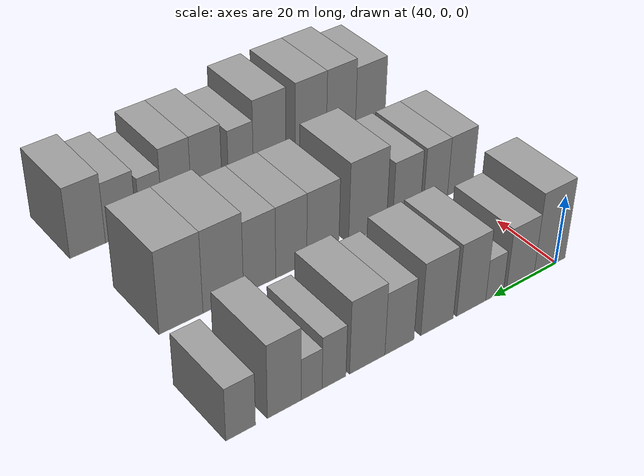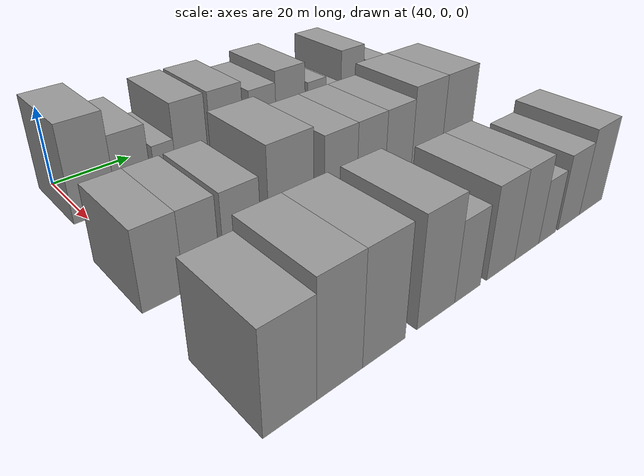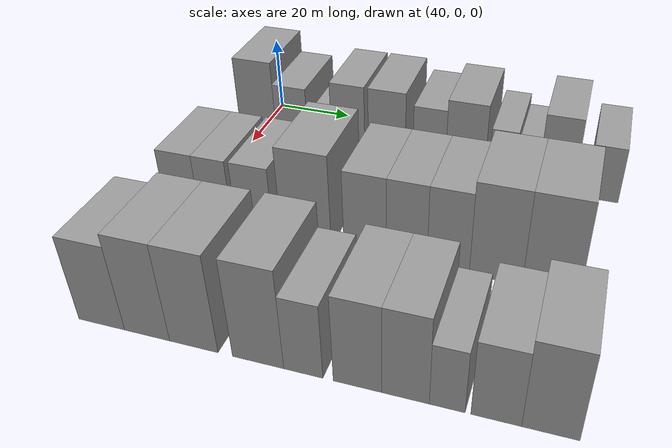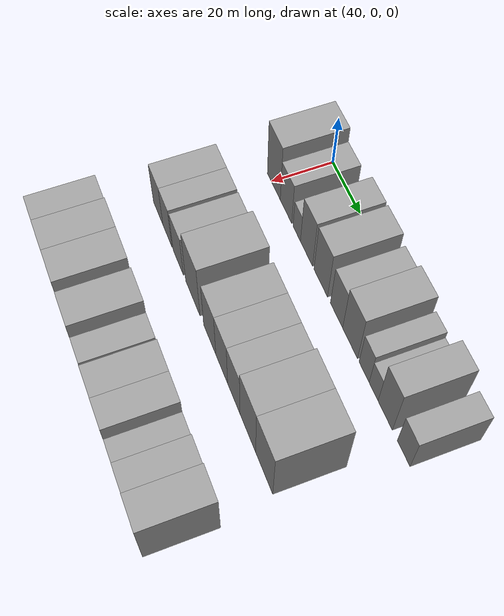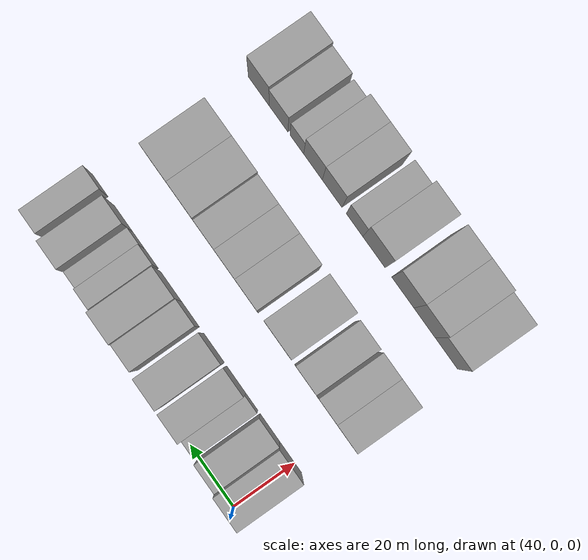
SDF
<sdf version="1.6">
 <world name="default">
  <model name="building_42">
   <static>1</static>
   <pose>50.0000 2.0145 0 0.000000 0.000000 0.000000</pose>
   <link name="link">
    <pose>0 0 12.00 0 0 0</pose>
    <collision name="collision"><geometry><box><size>20.0000 10.2558 24.0000</size></box></geometry></collision>
    <visual name="visual">
     <cast_shadows>0</cast_shadows>
     <geometry><box><size>20.0000 10.2558 24.0000</size></box></geometry>
     <material>
      <script>
       <uri>model://grey_wall/materials/scripts</uri>
       <uri>model://grey_wall/materials/textures</uri>
       <name>vrc/grey_wall</name>
      </script>
     </material>
    </visual>
   </link>
  </model>
  <model name="building_43">
   <static>1</static>
   <pose>50.0000 11.5758 0 0.000000 0.000000 0.000000</pose>
   <link name="link">
    <pose>0 0 9.00 0 0 0</pose>
    <collision name="collision"><geometry><box><size>20.0000 8.8667 18.0000</size></box></geometry></collision>
    <visual name="visual">
     <cast_shadows>0</cast_shadows>
     <geometry><box><size>20.0000 8.8667 18.0000</size></box></geometry>
     <material>
      <script>
       <uri>model://grey_wall/materials/scripts</uri>
       <uri>model://grey_wall/materials/textures</uri>
       <name>vrc/grey_wall</name>
      </script>
     </material>
    </visual>
   </link>
  </model>
  <model name="building_44">
   <static>1</static>
   <pose>50.0000 19.8012 0 0.000000 0.000000 0.000000</pose>
   <link name="link">
    <pose>0 0 6.00 0 0 0</pose>
    <collision name="collision"><geometry><box><size>20.0000 5.5843 12.0000</size></box></geometry></collision>
    <visual name="visual">
     <cast_shadows>0</cast_shadows>
     <geometry><box><size>20.0000 5.5843 12.0000</size></box></geometry>
     <material>
      <script>
       <uri>model://grey_wall/materials/scripts</uri>
       <uri>model://grey_wall/materials/textures</uri>
       <name>vrc/grey_wall</name>
      </script>
     </material>
    </visual>
   </link>
  </model>
  <model name="building_45">
   <static>1</static>
   <pose>50.0000 27.0636 0 0.000000 0.000000 0.000000</pose>
   <link name="link">
    <pose>0 0 10.50 0 0 0</pose>
    <collision name="collision"><geometry><box><size>20.0000 8.9404 21.0000</size></box></geometry></collision>
    <visual name="visual">
     <cast_shadows>0</cast_shadows>
     <geometry><box><size>20.0000 8.9404 21.0000</size></box></geometry>
     <material>
      <script>
       <uri>model://grey_wall/materials/scripts</uri>
       <uri>model://grey_wall/materials/textures</uri>
       <name>vrc/grey_wall</name>
      </script>
     </material>
    </visual>
   </link>
  </model>
  <model name="building_46">
   <static>1</static>
   <pose>50.0000 37.3804 0 0.000000 0.000000 0.000000</pose>
   <link name="link">
    <pose>0 0 10.50 0 0 0</pose>
    <collision name="collision"><geometry><box><size>20.0000 9.6932 21.0000</size></box></geometry></collision>
    <visual name="visual">
     <cast_shadows>0</cast_shadows>
     <geometry><box><size>20.0000 9.6932 21.0000</size></box></geometry>
     <material>
      <script>
       <uri>model://grey_wall/materials/scripts</uri>
       <uri>model://grey_wall/materials/textures</uri>
       <name>vrc/grey_wall</name>
      </script>
     </material>
    </visual>
   </link>
  </model>
  <model name="building_47">
   <static>1</static>
   <pose>50.0000 48.4204 0 0.000000 0.000000 0.000000</pose>
   <link name="link">
    <pose>0 0 9.00 0 0 0</pose>
    <collision name="collision"><geometry><box><size>20.0000 8.3869 18.0000</size></box></geometry></collision>
    <visual name="visual">
     <cast_shadows>0</cast_shadows>
     <geometry><box><size>20.0000 8.3869 18.0000</size></box></geometry>
     <material>
      <script>
       <uri>model://grey_wall/materials/scripts</uri>
       <uri>model://grey_wall/materials/textures</uri>
       <name>vrc/grey_wall</name>
      </script>
     </material>
    </visual>
   </link>
  </model>
  <model name="building_48">
   <static>1</static>
   <pose>50.0000 57.5546 0 0.000000 0.000000 0.000000</pose>
   <link name="link">
    <pose>0 0 10.50 0 0 0</pose>
    <collision name="collision"><geometry><box><size>20.0000 9.8814 21.0000</size></box></geometry></collision>
    <visual name="visual">
     <cast_shadows>0</cast_shadows>
     <geometry><box><size>20.0000 9.8814 21.0000</size></box></geometry>
     <material>
      <script>
       <uri>model://grey_wall/materials/scripts</uri>
       <uri>model://grey_wall/materials/textures</uri>
       <name>vrc/grey_wall</name>
      </script>
     </material>
    </visual>
   </link>
  </model>
  <model name="building_49">
   <static>1</static>
   <pose>50.0000 66.7380 0 0.000000 0.000000 0.000000</pose>
   <link name="link">
    <pose>0 0 7.50 0 0 0</pose>
    <collision name="collision"><geometry><box><size>20.0000 6.4854 15.0000</size></box></geometry></collision>
    <visual name="visual">
     <cast_shadows>0</cast_shadows>
     <geometry><box><size>20.0000 6.4854 15.0000</size></box></geometry>
     <material>
      <script>
       <uri>model://grey_wall/materials/scripts</uri>
       <uri>model://grey_wall/materials/textures</uri>
       <name>vrc/grey_wall</name>
      </script>
     </material>
    </visual>
   </link>
  </model>
  <model name="building_50">
   <static>1</static>
   <pose>50.0000 72.7875 0 0.000000 0.000000 0.000000</pose>
   <link name="link">
    <pose>0 0 6.00 0 0 0</pose>
    <collision name="collision"><geometry><box><size>20.0000 5.6137 12.0000</size></box></geometry></collision>
    <visual name="visual">
     <cast_shadows>0</cast_shadows>
     <geometry><box><size>20.0000 5.6137 12.0000</size></box></geometry>
     <material>
      <script>
       <uri>model://grey_wall/materials/scripts</uri>
       <uri>model://grey_wall/materials/textures</uri>
       <name>vrc/grey_wall</name>
      </script>
     </material>
    </visual>
   </link>
  </model>
  <model name="building_51">
   <static>1</static>
   <pose>50.0000 79.9788 0 0.000000 0.000000 0.000000</pose>
   <link name="link">
    <pose>0 0 10.50 0 0 0</pose>
    <collision name="collision"><geometry><box><size>20.0000 8.7689 21.0000</size></box></geometry></collision>
    <visual name="visual">
     <cast_shadows>0</cast_shadows>
     <geometry><box><size>20.0000 8.7689 21.0000</size></box></geometry>
     <material>
      <script>
       <uri>model://grey_wall/materials/scripts</uri>
       <uri>model://grey_wall/materials/textures</uri>
       <name>vrc/grey_wall</name>
      </script>
     </material>
    </visual>
   </link>
  </model>
  <model name="building_52">
   <static>1</static>
   <pose>50.0000 91.1030 0 0.000000 0.000000 0.000000</pose>
   <link name="link">
    <pose>0 0 7.50 0 0 0</pose>
    <collision name="collision"><geometry><box><size>20.0000 7.4795 15.0000</size></box></geometry></collision>
    <visual name="visual">
     <cast_shadows>0</cast_shadows>
     <geometry><box><size>20.0000 7.4795 15.0000</size></box></geometry>
     <material>
      <script>
       <uri>model://grey_wall/materials/scripts</uri>
       <uri>model://grey_wall/materials/textures</uri>
       <name>vrc/grey_wall</name>
      </script>
     </material>
    </visual>
   </link>
  </model>
  <model name="building_122">
   <static>1</static>
   <pose>85.0000 -1.0642 0 0.000000 0.000000 0.000000</pose>
   <link name="link">
    <pose>0 0 9.00 0 0 0</pose>
    <collision name="collision"><geometry><box><size>20.0000 8.7297 18.0000</size></box></geometry></collision>
    <visual name="visual">
     <cast_shadows>0</cast_shadows>
     <geometry><box><size>20.0000 8.7297 18.0000</size></box></geometry>
     <material>
      <script>
       <uri>model://grey_wall/materials/scripts</uri>
       <uri>model://grey_wall/materials/textures</uri>
       <name>vrc/grey_wall</name>
      </script>
     </material>
    </visual>
   </link>
  </model>
  <model name="building_123">
   <static>1</static>
   <pose>85.0000 7.3143 0 0.000000 0.000000 0.000000</pose>
   <link name="link">
    <pose>0 0 9.00 0 0 0</pose>
    <collision name="collision"><geometry><box><size>20.0000 8.0273 18.0000</size></box></geometry></collision>
    <visual name="visual">
     <cast_shadows>0</cast_shadows>
     <geometry><box><size>20.0000 8.0273 18.0000</size></box></geometry>
     <material>
      <script>
       <uri>model://grey_wall/materials/scripts</uri>
       <uri>model://grey_wall/materials/textures</uri>
       <name>vrc/grey_wall</name>
      </script>
     </material>
    </visual>
   </link>
  </model>
  <model name="building_124">
   <static>1</static>
   <pose>85.0000 16.8257 0 0.000000 0.000000 0.000000</pose>
   <link name="link">
    <pose>0 0 9.00 0 0 0</pose>
    <collision name="collision"><geometry><box><size>20.0000 8.9954 18.0000</size></box></geometry></collision>
    <visual name="visual">
     <cast_shadows>0</cast_shadows>
     <geometry><box><size>20.0000 8.9954 18.0000</size></box></geometry>
     <material>
      <script>
       <uri>model://grey_wall/materials/scripts</uri>
       <uri>model://grey_wall/materials/textures</uri>
       <name>vrc/grey_wall</name>
      </script>
     </material>
    </visual>
   </link>
  </model>
  <model name="building_125">
   <static>1</static>
   <pose>85.0000 29.2613 0 0.000000 0.000000 0.000000</pose>
   <link name="link">
    <pose>0 0 12.00 0 0 0</pose>
    <collision name="collision"><geometry><box><size>20.0000 11.8758 24.0000</size></box></geometry></collision>
    <visual name="visual">
     <cast_shadows>0</cast_shadows>
     <geometry><box><size>20.0000 11.8758 24.0000</size></box></geometry>
     <material>
      <script>
       <uri>model://grey_wall/materials/scripts</uri>
       <uri>model://grey_wall/materials/textures</uri>
       <name>vrc/grey_wall</name>
      </script>
     </material>
    </visual>
   </link>
  </model>
  <model name="building_126">
   <static>1</static>
   <pose>85.0000 43.0329 0 0.000000 0.000000 0.000000</pose>
   <link name="link">
    <pose>0 0 10.50 0 0 0</pose>
    <collision name="collision"><geometry><box><size>20.0000 9.6675 21.0000</size></box></geometry></collision>
    <visual name="visual">
     <cast_shadows>0</cast_shadows>
     <geometry><box><size>20.0000 9.6675 21.0000</size></box></geometry>
     <material>
      <script>
       <uri>model://grey_wall/materials/scripts</uri>
       <uri>model://grey_wall/materials/textures</uri>
       <name>vrc/grey_wall</name>
      </script>
     </material>
    </visual>
   </link>
  </model>
  <model name="building_127">
   <static>1</static>
   <pose>85.0000 52.4043 0 0.000000 0.000000 0.000000</pose>
   <link name="link">
    <pose>0 0 10.50 0 0 0</pose>
    <collision name="collision"><geometry><box><size>20.0000 9.0753 21.0000</size></box></geometry></collision>
    <visual name="visual">
     <cast_shadows>0</cast_shadows>
     <geometry><box><size>20.0000 9.0753 21.0000</size></box></geometry>
     <material>
      <script>
       <uri>model://grey_wall/materials/scripts</uri>
       <uri>model://grey_wall/materials/textures</uri>
       <name>vrc/grey_wall</name>
      </script>
     </material>
    </visual>
   </link>
  </model>
  <model name="building_128">
   <static>1</static>
   <pose>85.0000 61.5361 0 0.000000 0.000000 0.000000</pose>
   <link name="link">
    <pose>0 0 10.50 0 0 0</pose>
    <collision name="collision"><geometry><box><size>20.0000 9.1882 21.0000</size></box></geometry></collision>
    <visual name="visual">
     <cast_shadows>0</cast_shadows>
     <geometry><box><size>20.0000 9.1882 21.0000</size></box></geometry>
     <material>
      <script>
       <uri>model://grey_wall/materials/scripts</uri>
       <uri>model://grey_wall/materials/textures</uri>
       <name>vrc/grey_wall</name>
      </script>
     </material>
    </visual>
   </link>
  </model>
  <model name="building_129">
   <static>1</static>
   <pose>85.0000 71.7439 0 0.000000 0.000000 0.000000</pose>
   <link name="link">
    <pose>0 0 12.00 0 0 0</pose>
    <collision name="collision"><geometry><box><size>20.0000 11.2275 24.0000</size></box></geometry></collision>
    <visual name="visual">
     <cast_shadows>0</cast_shadows>
     <geometry><box><size>20.0000 11.2275 24.0000</size></box></geometry>
     <material>
      <script>
       <uri>model://grey_wall/materials/scripts</uri>
       <uri>model://grey_wall/materials/textures</uri>
       <name>vrc/grey_wall</name>
      </script>
     </material>
    </visual>
   </link>
  </model>
  <model name="building_130">
   <static>1</static>
   <pose>85.0000 83.2517 0 0.000000 0.000000 0.000000</pose>
   <link name="link">
    <pose>0 0 12.00 0 0 0</pose>
    <collision name="collision"><geometry><box><size>20.0000 11.7880 24.0000</size></box></geometry></collision>
    <visual name="visual">
     <cast_shadows>0</cast_shadows>
     <geometry><box><size>20.0000 11.7880 24.0000</size></box></geometry>
     <material>
      <script>
       <uri>model://grey_wall/materials/scripts</uri>
       <uri>model://grey_wall/materials/textures</uri>
       <name>vrc/grey_wall</name>
      </script>
     </material>
    </visual>
   </link>
  </model>
  <model name="building_204">
   <static>1</static>
   <pose>120.0000 0.2238 0 0.000000 0.000000 0.000000</pose>
   <link name="link">
    <pose>0 0 10.50 0 0 0</pose>
    <collision name="collision"><geometry><box><size>20.0000 10.2792 21.0000</size></box></geometry></collision>
    <visual name="visual">
     <cast_shadows>0</cast_shadows>
     <geometry><box><size>20.0000 10.2792 21.0000</size></box></geometry>
     <material>
      <script>
       <uri>model://grey_wall/materials/scripts</uri>
       <uri>model://grey_wall/materials/textures</uri>
       <name>vrc/grey_wall</name>
      </script>
     </material>
    </visual>
   </link>
  </model>
  <model name="building_205">
   <static>1</static>
   <pose>120.0000 10.2749 0 0.000000 0.000000 0.000000</pose>
   <link name="link">
    <pose>0 0 12.00 0 0 0</pose>
    <collision name="collision"><geometry><box><size>20.0000 9.8230 24.0000</size></box></geometry></collision>
    <visual name="visual">
     <cast_shadows>0</cast_shadows>
     <geometry><box><size>20.0000 9.8230 24.0000</size></box></geometry>
     <material>
      <script>
       <uri>model://grey_wall/materials/scripts</uri>
       <uri>model://grey_wall/materials/textures</uri>
       <name>vrc/grey_wall</name>
      </script>
     </material>
    </visual>
   </link>
  </model>
  <model name="building_206">
   <static>1</static>
   <pose>120.0000 20.2909 0 0.000000 0.000000 0.000000</pose>
   <link name="link">
    <pose>0 0 12.00 0 0 0</pose>
    <collision name="collision"><geometry><box><size>20.0000 10.2088 24.0000</size></box></geometry></collision>
    <visual name="visual">
     <cast_shadows>0</cast_shadows>
     <geometry><box><size>20.0000 10.2088 24.0000</size></box></geometry>
     <material>
      <script>
       <uri>model://grey_wall/materials/scripts</uri>
       <uri>model://grey_wall/materials/textures</uri>
       <name>vrc/grey_wall</name>
      </script>
     </material>
    </visual>
   </link>
  </model>
  <model name="building_207">
   <static>1</static>
   <pose>120.0000 33.5786 0 0.000000 0.000000 0.000000</pose>
   <link name="link">
    <pose>0 0 12.00 0 0 0</pose>
    <collision name="collision"><geometry><box><size>20.0000 10.3667 24.0000</size></box></geometry></collision>
    <visual name="visual">
     <cast_shadows>0</cast_shadows>
     <geometry><box><size>20.0000 10.3667 24.0000</size></box></geometry>
     <material>
      <script>
       <uri>model://grey_wall/materials/scripts</uri>
       <uri>model://grey_wall/materials/textures</uri>
       <name>vrc/grey_wall</name>
      </script>
     </material>
    </visual>
   </link>
  </model>
  <model name="building_208">
   <static>1</static>
   <pose>120.0000 42.6038 0 0.000000 0.000000 0.000000</pose>
   <link name="link">
    <pose>0 0 9.00 0 0 0</pose>
    <collision name="collision"><geometry><box><size>20.0000 7.6836 18.0000</size></box></geometry></collision>
    <visual name="visual">
     <cast_shadows>0</cast_shadows>
     <geometry><box><size>20.0000 7.6836 18.0000</size></box></geometry>
     <material>
      <script>
       <uri>model://grey_wall/materials/scripts</uri>
       <uri>model://grey_wall/materials/textures</uri>
       <name>vrc/grey_wall</name>
      </script>
     </material>
    </visual>
   </link>
  </model>
  <model name="building_209">
   <static>1</static>
   <pose>120.0000 53.0552 0 0.000000 0.000000 0.000000</pose>
   <link name="link">
    <pose>0 0 10.50 0 0 0</pose>
    <collision name="collision"><geometry><box><size>20.0000 9.2193 21.0000</size></box></geometry></collision>
    <visual name="visual">
     <cast_shadows>0</cast_shadows>
     <geometry><box><size>20.0000 9.2193 21.0000</size></box></geometry>
     <material>
      <script>
       <uri>model://grey_wall/materials/scripts</uri>
       <uri>model://grey_wall/materials/textures</uri>
       <name>vrc/grey_wall</name>
      </script>
     </material>
    </visual>
   </link>
  </model>
  <model name="building_210">
   <static>1</static>
   <pose>120.0000 62.0169 0 0.000000 0.000000 0.000000</pose>
   <link name="link">
    <pose>0 0 10.50 0 0 0</pose>
    <collision name="collision"><geometry><box><size>20.0000 8.7039 21.0000</size></box></geometry></collision>
    <visual name="visual">
     <cast_shadows>0</cast_shadows>
     <geometry><box><size>20.0000 8.7039 21.0000</size></box></geometry>
     <material>
      <script>
       <uri>model://grey_wall/materials/scripts</uri>
       <uri>model://grey_wall/materials/textures</uri>
       <name>vrc/grey_wall</name>
      </script>
     </material>
    </visual>
   </link>
  </model>
  <model name="building_211">
   <static>1</static>
   <pose>120.0000 69.5715 0 0.000000 0.000000 0.000000</pose>
   <link name="link">
    <pose>0 0 7.50 0 0 0</pose>
    <collision name="collision"><geometry><box><size>20.0000 6.4054 15.0000</size></box></geometry></collision>
    <visual name="visual">
     <cast_shadows>0</cast_shadows>
     <geometry><box><size>20.0000 6.4054 15.0000</size></box></geometry>
     <material>
      <script>
       <uri>model://grey_wall/materials/scripts</uri>
       <uri>model://grey_wall/materials/textures</uri>
       <name>vrc/grey_wall</name>
      </script>
     </material>
    </visual>
   </link>
  </model>
  <model name="building_212">
   <static>1</static>
   <pose>120.0000 78.1821 0 0.000000 0.000000 0.000000</pose>
   <link name="link">
    <pose>0 0 9.00 0 0 0</pose>
    <collision name="collision"><geometry><box><size>20.0000 8.8157 18.0000</size></box></geometry></collision>
    <visual name="visual">
     <cast_shadows>0</cast_shadows>
     <geometry><box><size>20.0000 8.8157 18.0000</size></box></geometry>
     <material>
      <script>
       <uri>model://grey_wall/materials/scripts</uri>
       <uri>model://grey_wall/materials/textures</uri>
       <name>vrc/grey_wall</name>
      </script>
     </material>
    </visual>
   </link>
  </model>
  <model name="building_213">
   <static>1</static>
   <pose>120.0000 87.5007 0 0.000000 0.000000 0.000000</pose>
   <link name="link">
    <pose>0 0 10.50 0 0 0</pose>
    <collision name="collision"><geometry><box><size>20.0000 9.8215 21.0000</size></box></geometry></collision>
    <visual name="visual">
     <cast_shadows>0</cast_shadows>
     <geometry><box><size>20.0000 9.8215 21.0000</size></box></geometry>
     <material>
      <script>
       <uri>model://grey_wall/materials/scripts</uri>
       <uri>model://grey_wall/materials/textures</uri>
       <name>vrc/grey_wall</name>
      </script>
     </material>
    </visual>
   </link>
  </model>
 </world>
</sdf>
